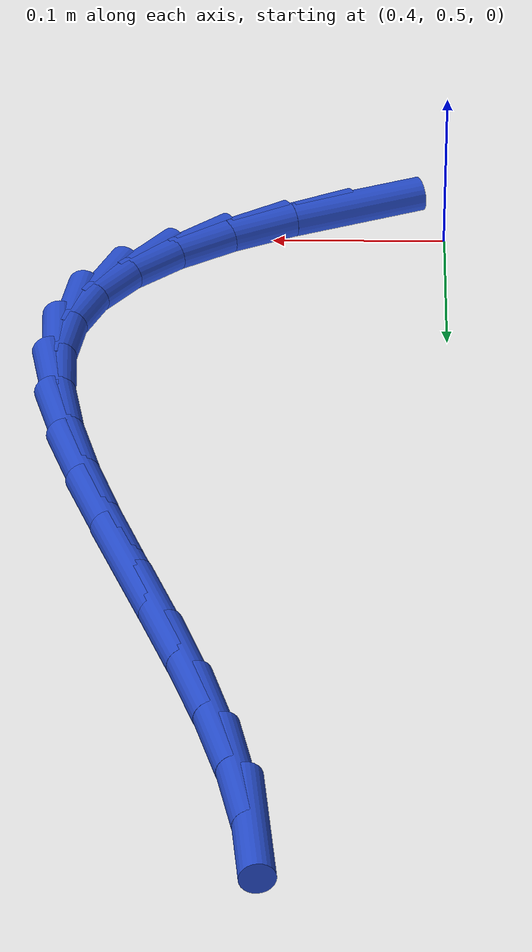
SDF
<sdf version="1.6">
 <world name="default">
  <model name="ground_plane">
   <static>1</static>
   <link name="link">
    <collision name="collision">
     <geometry><plane><normal>0 0 1</normal><size>100 100</size></plane></geometry>
     <surface><friction><ode><mu>100</mu><mu2>50</mu2></ode></friction></surface>
    </collision>
    <visual name="visual">
     <cast_shadows>0</cast_shadows>
     <geometry><plane><normal>0 0 1</normal><size>100 100</size></plane></geometry>
     <material>
      <script><uri>file://media/materials/scripts/gazebo.material</uri><name>Gazebo/WhiteGlow</name></script>
     </material>
    </visual>
   </link>
  </model>
  <model name="line">
   <link name="link_18">
    <pose>0.45127359885208707 0.47849240640985946 0.01 0 1.57 0.3586318935152991</pose>
    <collision name="collision">
     <geometry><cylinder><radius>0.01</radius><length>0.08</length></cylinder></geometry>
    </collision>
    <visual name="visual">
     <material>
      <script><name>Gazebo/Blue</name><uri>file://media/materials/scripts/gazebo.material</uri></script>
     </material>
     <geometry><cylinder><radius>0.01</radius><length>0.08</length></cylinder></geometry>
    </visual>
   </link>
   <link name="link_19">
    <pose>0.4902421095819172 0.49309942984178573 0.01 0 1.57 0.42667551971940476</pose>
    <collision name="collision">
     <geometry><cylinder><radius>0.01</radius><length>0.08</length></cylinder></geometry>
    </collision>
    <visual name="visual">
     <material>
      <script><name>Gazebo/Blue</name><uri>file://media/materials/scripts/gazebo.material</uri></script>
     </material>
     <geometry><cylinder><radius>0.01</radius><length>0.08</length></cylinder></geometry>
    </visual>
   </link>
   <link name="link_20">
    <pose>0.5256875381388871 0.5092130423644292 0.01 0 1.57 0.5276791146542511</pose>
    <collision name="collision">
     <geometry><cylinder><radius>0.01</radius><length>0.08</length></cylinder></geometry>
    </collision>
    <visual name="visual">
     <material>
      <script><name>Gazebo/Blue</name><uri>file://media/materials/scripts/gazebo.material</uri></script>
     </material>
     <geometry><cylinder><radius>0.01</radius><length>0.08</length></cylinder></geometry>
    </visual>
   </link>
   <link name="link_21">
    <pose>0.5567598787683082 0.5273221142939375 0.01 0 1.57 0.6727090961939625</pose>
    <collision name="collision">
     <geometry><cylinder><radius>0.01</radius><length>0.08</length></cylinder></geometry>
    </collision>
    <visual name="visual">
     <material>
      <script><name>Gazebo/Blue</name><uri>file://media/materials/scripts/gazebo.material</uri></script>
     </material>
     <geometry><cylinder><radius>0.01</radius><length>0.08</length></cylinder></geometry>
    </visual>
   </link>
   <link name="link_22">
    <pose>0.582609125715492 0.5479155159464584 0.01 0 1.57 0.8726292501060373</pose>
    <collision name="collision">
     <geometry><cylinder><radius>0.01</radius><length>0.08</length></cylinder></geometry>
    </collision>
    <visual name="visual">
     <material>
      <script><name>Gazebo/Blue</name><uri>file://media/materials/scripts/gazebo.material</uri></script>
     </material>
     <geometry><cylinder><radius>0.01</radius><length>0.08</length></cylinder></geometry>
    </visual>
   </link>
   <link name="link_23">
    <pose>0.6023852732257492 0.5714821176381393 0.01 0 1.57 1.126886971013885</pose>
    <collision name="collision">
     <geometry><cylinder><radius>0.01</radius><length>0.08</length></cylinder></geometry>
    </collision>
    <visual name="visual">
     <material>
      <script><name>Gazebo/Blue</name><uri>file://media/materials/scripts/gazebo.material</uri></script>
     </material>
     <geometry><cylinder><radius>0.01</radius><length>0.08</length></cylinder></geometry>
    </visual>
   </link>
   <link name="link_24">
    <pose>0.6152390025890027 0.5985104418861228 0.01 0 1.57 1.3922145638857792</pose>
    <collision name="collision">
     <geometry><cylinder><radius>0.01</radius><length>0.08</length></cylinder></geometry>
    </collision>
    <visual name="visual">
     <material>
      <script><name>Gazebo/Blue</name><uri>file://media/materials/scripts/gazebo.material</uri></script>
     </material>
     <geometry><cylinder><radius>0.01</radius><length>0.08</length></cylinder></geometry>
    </visual>
   </link>
   <link name="link_25">
    <pose>0.6207880981786935 0.6292525520532252 0.01 0 1.57 -1.5455949504341018</pose>
    <collision name="collision">
     <geometry><cylinder><radius>0.01</radius><length>0.08</length></cylinder></geometry>
    </collision>
    <visual name="visual">
     <material>
      <script><name>Gazebo/Blue</name><uri>file://media/materials/scripts/gazebo.material</uri></script>
     </material>
     <geometry><cylinder><radius>0.01</radius><length>0.08</length></cylinder></geometry>
    </visual>
   </link>
   <link name="link_26">
    <pose>0.6199295475775028 0.6633129471428305 0.01 0 1.57 -1.4054724043046753</pose>
    <collision name="collision">
     <geometry><cylinder><radius>0.01</radius><length>0.08</length></cylinder></geometry>
    </collision>
    <visual name="visual">
     <material>
      <script><name>Gazebo/Blue</name><uri>file://media/materials/scripts/gazebo.material</uri></script>
     </material>
     <geometry><cylinder><radius>0.01</radius><length>0.08</length></cylinder></geometry>
    </visual>
   </link>
   <link name="link_27">
    <pose>0.6137773525054828 0.7001862682250095 0.01 0 1.57 -1.312969559625191</pose>
    <collision name="collision">
     <geometry><cylinder><radius>0.01</radius><length>0.08</length></cylinder></geometry>
    </collision>
    <visual name="visual">
     <material>
      <script><name>Gazebo/Blue</name><uri>file://media/materials/scripts/gazebo.material</uri></script>
     </material>
     <geometry><cylinder><radius>0.01</radius><length>0.08</length></cylinder></geometry>
    </visual>
   </link>
   <link name="link_28">
    <pose>0.6034455146826864 0.7393671563698321 0.01 0 1.57 -1.2548445960010377</pose>
    <collision name="collision">
     <geometry><cylinder><radius>0.01</radius><length>0.08</length></cylinder></geometry>
    </collision>
    <visual name="visual">
     <material>
      <script><name>Gazebo/Blue</name><uri>file://media/materials/scripts/gazebo.material</uri></script>
     </material>
     <geometry><cylinder><radius>0.01</radius><length>0.08</length></cylinder></geometry>
    </visual>
   </link>
   <link name="link_29">
    <pose>0.5900480358291662 0.7803502526473688 0.01 0 1.57 -1.2225561777159923</pose>
    <collision name="collision">
     <geometry><cylinder><radius>0.01</radius><length>0.08</length></cylinder></geometry>
    </collision>
    <visual name="visual">
     <material>
      <script><name>Gazebo/Blue</name><uri>file://media/materials/scripts/gazebo.material</uri></script>
     </material>
     <geometry><cylinder><radius>0.01</radius><length>0.08</length></cylinder></geometry>
    </visual>
   </link>
   <link name="link_30">
    <pose>0.5746989176649747 0.8226301981276901 0.01 0 1.57 -1.21131409168786</pose>
    <collision name="collision">
     <geometry><cylinder><radius>0.01</radius><length>0.08</length></cylinder></geometry>
    </collision>
    <visual name="visual">
     <material>
      <script><name>Gazebo/Blue</name><uri>file://media/materials/scripts/gazebo.material</uri></script>
     </material>
     <geometry><cylinder><radius>0.01</radius><length>0.08</length></cylinder></geometry>
    </visual>
   </link>
   <link name="link_31">
    <pose>0.5585121619101648 0.865701633880866 0.01 0 1.57 -1.219095044279078</pose>
    <collision name="collision">
     <geometry><cylinder><radius>0.01</radius><length>0.08</length></cylinder></geometry>
    </collision>
    <visual name="visual">
     <material>
      <script><name>Gazebo/Blue</name><uri>file://media/materials/scripts/gazebo.material</uri></script>
     </material>
     <geometry><cylinder><radius>0.01</radius><length>0.08</length></cylinder></geometry>
    </visual>
   </link>
   <link name="link_32">
    <pose>0.5426017702847892 0.9090592009769675 0.01 0 1.57 -1.2461157242385992</pose>
    <collision name="collision">
     <geometry><cylinder><radius>0.01</radius><length>0.08</length></cylinder></geometry>
    </collision>
    <visual name="visual">
     <material>
      <script><name>Gazebo/Blue</name><uri>file://media/materials/scripts/gazebo.material</uri></script>
     </material>
     <geometry><cylinder><radius>0.01</radius><length>0.08</length></cylinder></geometry>
    </visual>
   </link>
   <link name="link_33">
    <pose>0.5280817445089002 0.9521975404860645 0.01 0 1.57 -1.2947336127291564</pose>
    <collision name="collision">
     <geometry><cylinder><radius>0.01</radius><length>0.08</length></cylinder></geometry>
    </collision>
    <visual name="visual">
     <material>
      <script><name>Gazebo/Blue</name><uri>file://media/materials/scripts/gazebo.material</uri></script>
     </material>
     <geometry><cylinder><radius>0.01</radius><length>0.08</length></cylinder></geometry>
    </visual>
   </link>
   <link name="link_34">
    <pose>0.516066086302551 0.9946112934782274 0.01 0 1.57 -1.3696556799582007</pose>
    <collision name="collision">
     <geometry><cylinder><radius>0.01</radius><length>0.08</length></cylinder></geometry>
    </collision>
    <visual name="visual">
     <material>
      <script><name>Gazebo/Blue</name><uri>file://media/materials/scripts/gazebo.material</uri></script>
     </material>
     <geometry><cylinder><radius>0.01</radius><length>0.08</length></cylinder></geometry>
    </visual>
   </link>
   <link name="link_35">
    <pose>0.5076687973857938 1.035795101023527 0.01 0 1.57 -1.4781583871688446</pose>
    <collision name="collision">
     <geometry><cylinder><radius>0.01</radius><length>0.08</length></cylinder></geometry>
    </collision>
    <visual name="visual">
     <material>
      <script><name>Gazebo/Blue</name><uri>file://media/materials/scripts/gazebo.material</uri></script>
     </material>
     <geometry><cylinder><radius>0.01</radius><length>0.08</length></cylinder></geometry>
    </visual>
   </link>
  </model>
 </world>
</sdf>
